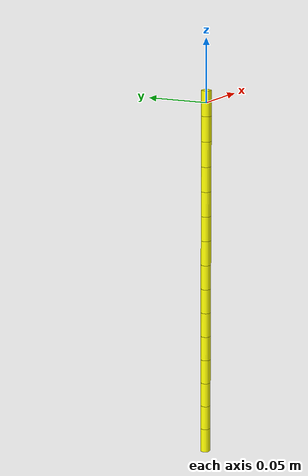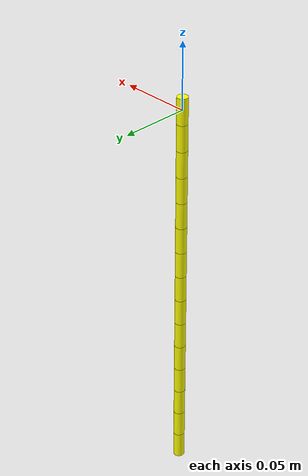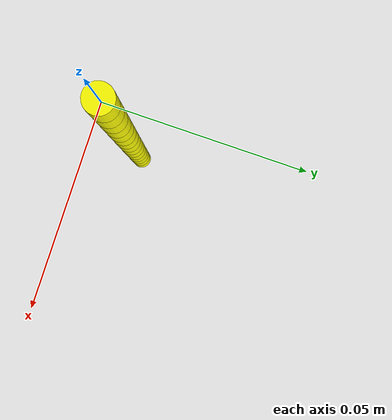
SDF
<?xml version='1.0'?>
<sdf version='1.6'>
<model name='cable_l300_r4.00_nb15_s1.0000_bent_'>
    <link name='link_0'>
      <inertial>
        <mass>4.523894e-03</mass>
        <inertia>
          <ixx>1.688921e-07</ixx>
          <ixy>0.000000e+00</ixy>
          <ixz>0.000000e+00</ixz>
          <iyy>1.688921e-07</iyy>
          <iyz>0.000000e+00</iyz>
          <izz>3.619116e-08</izz>
        </inertia>
        <pose frame=''>0 0 0 0 -0 0</pose>
      </inertial>
      <pose frame=''>0 0 0.000000 0 -0 0</pose>
      <gravity>1</gravity>
      <self_collide>0</self_collide>
      <kinematic>1</kinematic>
      <enable_wind>0</enable_wind>
      <visual name='visual'>
        <pose frame=''>0 0 0 0 -0 0</pose>
        <geometry>
          <cylinder>
            <radius>0.004000</radius>
            <length>0.020000</length>
          </cylinder>
        </geometry>
        <material>
          <lighting>1</lighting>
          <script>
            <uri>file://media/materials/scripts/gazebo.material</uri>
            <name>Gazebo/Grey</name>
          </script>
          <shader type='pixel'>
            <normal_map>__default__</normal_map>
          </shader>
          <ambient>0.5 0.75 0 1</ambient>
          <diffuse>1 1 0 1</diffuse>
          <specular>0.439 0.439 0.439 1</specular>
          <emissive>0.1 0 0.1 1</emissive>
        </material>
        <transparency>0</transparency>
        <cast_shadows>1</cast_shadows>
      </visual>
      <collision name='collision'>
        <laser_retro>0</laser_retro>
        <max_contacts>10</max_contacts>
        <pose frame=''>0 0 0 0 -0 0</pose>
        <geometry>
          <cylinder>
            <radius>0.004000</radius>
            <length>0.020000</length>
          </cylinder>
        </geometry>
        <surface>
          <friction>
            <ode>
              <mu>1</mu>
              <mu2>1</mu2>
              <fdir1>0 0 0</fdir1>
              <slip1>0</slip1>
              <slip2>0</slip2>
            </ode>
            <torsional>
              <coefficient>1</coefficient>
              <patch_radius>0</patch_radius>
              <surface_radius>0</surface_radius>
              <use_patch_radius>1</use_patch_radius>
              <ode>
                <slip>0</slip>
              </ode>
            </torsional>
          </friction>
          <bounce>
            <restitution_coefficient>0</restitution_coefficient>
            <threshold>1e+06</threshold>
          </bounce>
          <contact>
            <collide_without_contact>0</collide_without_contact>
            <collide_without_contact_bitmask>1</collide_without_contact_bitmask>
            <collide_bitmask>1</collide_bitmask>
            <ode>
              <soft_cfm>0</soft_cfm>
              <soft_erp>0.2</soft_erp>
              <kp>1e+13</kp>
              <kd>1</kd>
              <max_vel>0.01</max_vel>
              <min_depth>0</min_depth>
            </ode>
            <bullet>
              <split_impulse>1</split_impulse>
              <split_impulse_penetration_threshold>-0.01</split_impulse_penetration_threshold>
              <soft_cfm>0</soft_cfm>
              <soft_erp>0.2</soft_erp>
              <kp>1e+13</kp>
              <kd>1</kd>
            </bullet>
          </contact>
        </surface>
      </collision>
    </link>
    <link name='link_1'>
      <inertial>
        <mass>4.523894e-03</mass>
        <inertia>
          <ixx>1.688921e-07</ixx>
          <ixy>0.000000e+00</ixy>
          <ixz>0.000000e+00</ixz>
          <iyy>1.688921e-07</iyy>
          <iyz>0.000000e+00</iyz>
          <izz>3.619116e-08</izz>
        </inertia>
        <pose frame=''>0 0 0 0 -0 0</pose>
      </inertial>
      <pose frame=''>0 0 -0.020000 0 -0 0</pose>
      <gravity>1</gravity>
      <self_collide>0</self_collide>
      <kinematic>0</kinematic>
      <enable_wind>0</enable_wind>
      <visual name='visual'>
        <pose frame=''>0 0 0 0 -0 0</pose>
        <geometry>
          <cylinder>
            <radius>0.004000</radius>
            <length>0.020000</length>
          </cylinder>
        </geometry>
        <material>
          <lighting>1</lighting>
          <script>
            <uri>file://media/materials/scripts/gazebo.material</uri>
            <name>Gazebo/Grey</name>
          </script>
          <shader type='pixel'>
            <normal_map>__default__</normal_map>
          </shader>
          <ambient>0.5 0.75 0 1</ambient>
          <diffuse>1 1 0 1</diffuse>
          <specular>0.439 0.439 0.439 1</specular>
          <emissive>0.1 0 0.1 1</emissive>
        </material>
        <transparency>0</transparency>
        <cast_shadows>1</cast_shadows>
      </visual>
      <collision name='collision'>
        <laser_retro>0</laser_retro>
        <max_contacts>10</max_contacts>
        <pose frame=''>0 0 0 0 -0 0</pose>
        <geometry>
          <cylinder>
            <radius>0.004000</radius>
            <length>0.020000</length>
          </cylinder>
        </geometry>
        <surface>
          <friction>
            <ode>
              <mu>1</mu>
              <mu2>1</mu2>
              <fdir1>0 0 0</fdir1>
              <slip1>0</slip1>
              <slip2>0</slip2>
            </ode>
            <torsional>
              <coefficient>1</coefficient>
              <patch_radius>0</patch_radius>
              <surface_radius>0</surface_radius>
              <use_patch_radius>1</use_patch_radius>
              <ode>
                <slip>0</slip>
              </ode>
            </torsional>
          </friction>
          <bounce>
            <restitution_coefficient>0</restitution_coefficient>
            <threshold>1e+06</threshold>
          </bounce>
          <contact>
            <collide_without_contact>0</collide_without_contact>
            <collide_without_contact_bitmask>1</collide_without_contact_bitmask>
            <collide_bitmask>1</collide_bitmask>
            <ode>
              <soft_cfm>0</soft_cfm>
              <soft_erp>0.2</soft_erp>
              <kp>1e+13</kp>
              <kd>1</kd>
              <max_vel>0.01</max_vel>
              <min_depth>0</min_depth>
            </ode>
            <bullet>
              <split_impulse>1</split_impulse>
              <split_impulse_penetration_threshold>-0.01</split_impulse_penetration_threshold>
              <soft_cfm>0</soft_cfm>
              <soft_erp>0.2</soft_erp>
              <kp>1e+13</kp>
              <kd>1</kd>
            </bullet>
          </contact>
        </surface>
      </collision>
    </link>
    <link name='link_2'>
      <inertial>
        <mass>4.523894e-03</mass>
        <inertia>
          <ixx>1.688921e-07</ixx>
          <ixy>0.000000e+00</ixy>
          <ixz>0.000000e+00</ixz>
          <iyy>1.688921e-07</iyy>
          <iyz>0.000000e+00</iyz>
          <izz>3.619116e-08</izz>
        </inertia>
        <pose frame=''>0 0 0 0 -0 0</pose>
      </inertial>
      <pose frame=''>0 0 -0.040000 0 -0 0</pose>
      <gravity>1</gravity>
      <self_collide>0</self_collide>
      <kinematic>0</kinematic>
      <enable_wind>0</enable_wind>
      <visual name='visual'>
        <pose frame=''>0 0 0 0 -0 0</pose>
        <geometry>
          <cylinder>
            <radius>0.004000</radius>
            <length>0.020000</length>
          </cylinder>
        </geometry>
        <material>
          <lighting>1</lighting>
          <script>
            <uri>file://media/materials/scripts/gazebo.material</uri>
            <name>Gazebo/Grey</name>
          </script>
          <shader type='pixel'>
            <normal_map>__default__</normal_map>
          </shader>
          <ambient>0.5 0.75 0 1</ambient>
          <diffuse>1 1 0 1</diffuse>
          <specular>0.439 0.439 0.439 1</specular>
          <emissive>0.1 0 0.1 1</emissive>
        </material>
        <transparency>0</transparency>
        <cast_shadows>1</cast_shadows>
      </visual>
      <collision name='collision'>
        <laser_retro>0</laser_retro>
        <max_contacts>10</max_contacts>
        <pose frame=''>0 0 0 0 -0 0</pose>
        <geometry>
          <cylinder>
            <radius>0.004000</radius>
            <length>0.020000</length>
          </cylinder>
        </geometry>
        <surface>
          <friction>
            <ode>
              <mu>1</mu>
              <mu2>1</mu2>
              <fdir1>0 0 0</fdir1>
              <slip1>0</slip1>
              <slip2>0</slip2>
            </ode>
            <torsional>
              <coefficient>1</coefficient>
              <patch_radius>0</patch_radius>
              <surface_radius>0</surface_radius>
              <use_patch_radius>1</use_patch_radius>
              <ode>
                <slip>0</slip>
              </ode>
            </torsional>
          </friction>
          <bounce>
            <restitution_coefficient>0</restitution_coefficient>
            <threshold>1e+06</threshold>
          </bounce>
          <contact>
            <collide_without_contact>0</collide_without_contact>
            <collide_without_contact_bitmask>1</collide_without_contact_bitmask>
            <collide_bitmask>1</collide_bitmask>
            <ode>
              <soft_cfm>0</soft_cfm>
              <soft_erp>0.2</soft_erp>
              <kp>1e+13</kp>
              <kd>1</kd>
              <max_vel>0.01</max_vel>
              <min_depth>0</min_depth>
            </ode>
            <bullet>
              <split_impulse>1</split_impulse>
              <split_impulse_penetration_threshold>-0.01</split_impulse_penetration_threshold>
              <soft_cfm>0</soft_cfm>
              <soft_erp>0.2</soft_erp>
              <kp>1e+13</kp>
              <kd>1</kd>
            </bullet>
          </contact>
        </surface>
      </collision>
    </link>
    <link name='link_3'>
      <inertial>
        <mass>4.523894e-03</mass>
        <inertia>
          <ixx>1.688921e-07</ixx>
          <ixy>0.000000e+00</ixy>
          <ixz>0.000000e+00</ixz>
          <iyy>1.688921e-07</iyy>
          <iyz>0.000000e+00</iyz>
          <izz>3.619116e-08</izz>
        </inertia>
        <pose frame=''>0 0 0 0 -0 0</pose>
      </inertial>
      <pose frame=''>0 0 -0.060000 0 -0 0</pose>
      <gravity>1</gravity>
      <self_collide>0</self_collide>
      <kinematic>0</kinematic>
      <enable_wind>0</enable_wind>
      <visual name='visual'>
        <pose frame=''>0 0 0 0 -0 0</pose>
        <geometry>
          <cylinder>
            <radius>0.004000</radius>
            <length>0.020000</length>
          </cylinder>
        </geometry>
        <material>
          <lighting>1</lighting>
          <script>
            <uri>file://media/materials/scripts/gazebo.material</uri>
            <name>Gazebo/Grey</name>
          </script>
          <shader type='pixel'>
            <normal_map>__default__</normal_map>
          </shader>
          <ambient>0.5 0.75 0 1</ambient>
          <diffuse>1 1 0 1</diffuse>
          <specular>0.439 0.439 0.439 1</specular>
          <emissive>0.1 0 0.1 1</emissive>
        </material>
        <transparency>0</transparency>
        <cast_shadows>1</cast_shadows>
      </visual>
      <collision name='collision'>
        <laser_retro>0</laser_retro>
        <max_contacts>10</max_contacts>
        <pose frame=''>0 0 0 0 -0 0</pose>
        <geometry>
          <cylinder>
            <radius>0.004000</radius>
            <length>0.020000</length>
          </cylinder>
        </geometry>
        <surface>
          <friction>
            <ode>
              <mu>1</mu>
              <mu2>1</mu2>
              <fdir1>0 0 0</fdir1>
              <slip1>0</slip1>
              <slip2>0</slip2>
            </ode>
            <torsional>
              <coefficient>1</coefficient>
              <patch_radius>0</patch_radius>
              <surface_radius>0</surface_radius>
              <use_patch_radius>1</use_patch_radius>
              <ode>
                <slip>0</slip>
              </ode>
            </torsional>
          </friction>
          <bounce>
            <restitution_coefficient>0</restitution_coefficient>
            <threshold>1e+06</threshold>
          </bounce>
          <contact>
            <collide_without_contact>0</collide_without_contact>
            <collide_without_contact_bitmask>1</collide_without_contact_bitmask>
            <collide_bitmask>1</collide_bitmask>
            <ode>
              <soft_cfm>0</soft_cfm>
              <soft_erp>0.2</soft_erp>
              <kp>1e+13</kp>
              <kd>1</kd>
              <max_vel>0.01</max_vel>
              <min_depth>0</min_depth>
            </ode>
            <bullet>
              <split_impulse>1</split_impulse>
              <split_impulse_penetration_threshold>-0.01</split_impulse_penetration_threshold>
              <soft_cfm>0</soft_cfm>
              <soft_erp>0.2</soft_erp>
              <kp>1e+13</kp>
              <kd>1</kd>
            </bullet>
          </contact>
        </surface>
      </collision>
    </link>
    <link name='link_4'>
      <inertial>
        <mass>4.523894e-03</mass>
        <inertia>
          <ixx>1.688921e-07</ixx>
          <ixy>0.000000e+00</ixy>
          <ixz>0.000000e+00</ixz>
          <iyy>1.688921e-07</iyy>
          <iyz>0.000000e+00</iyz>
          <izz>3.619116e-08</izz>
        </inertia>
        <pose frame=''>0 0 0 0 -0 0</pose>
      </inertial>
      <pose frame=''>0 0 -0.080000 0 -0 0</pose>
      <gravity>1</gravity>
      <self_collide>0</self_collide>
      <kinematic>0</kinematic>
      <enable_wind>0</enable_wind>
      <visual name='visual'>
        <pose frame=''>0 0 0 0 -0 0</pose>
        <geometry>
          <cylinder>
            <radius>0.004000</radius>
            <length>0.020000</length>
          </cylinder>
        </geometry>
        <material>
          <lighting>1</lighting>
          <script>
            <uri>file://media/materials/scripts/gazebo.material</uri>
            <name>Gazebo/Grey</name>
          </script>
          <shader type='pixel'>
            <normal_map>__default__</normal_map>
          </shader>
          <ambient>0.5 0.75 0 1</ambient>
          <diffuse>1 1 0 1</diffuse>
          <specular>0.439 0.439 0.439 1</specular>
          <emissive>0.1 0 0.1 1</emissive>
        </material>
        <transparency>0</transparency>
        <cast_shadows>1</cast_shadows>
      </visual>
      <collision name='collision'>
        <laser_retro>0</laser_retro>
        <max_contacts>10</max_contacts>
        <pose frame=''>0 0 0 0 -0 0</pose>
        <geometry>
          <cylinder>
            <radius>0.004000</radius>
            <length>0.020000</length>
          </cylinder>
        </geometry>
        <surface>
          <friction>
            <ode>
              <mu>1</mu>
              <mu2>1</mu2>
              <fdir1>0 0 0</fdir1>
              <slip1>0</slip1>
              <slip2>0</slip2>
            </ode>
            <torsional>
              <coefficient>1</coefficient>
              <patch_radius>0</patch_radius>
              <surface_radius>0</surface_radius>
              <use_patch_radius>1</use_patch_radius>
              <ode>
                <slip>0</slip>
              </ode>
            </torsional>
          </friction>
          <bounce>
            <restitution_coefficient>0</restitution_coefficient>
            <threshold>1e+06</threshold>
          </bounce>
          <contact>
            <collide_without_contact>0</collide_without_contact>
            <collide_without_contact_bitmask>1</collide_without_contact_bitmask>
            <collide_bitmask>1</collide_bitmask>
            <ode>
              <soft_cfm>0</soft_cfm>
              <soft_erp>0.2</soft_erp>
              <kp>1e+13</kp>
              <kd>1</kd>
              <max_vel>0.01</max_vel>
              <min_depth>0</min_depth>
            </ode>
            <bullet>
              <split_impulse>1</split_impulse>
              <split_impulse_penetration_threshold>-0.01</split_impulse_penetration_threshold>
              <soft_cfm>0</soft_cfm>
              <soft_erp>0.2</soft_erp>
              <kp>1e+13</kp>
              <kd>1</kd>
            </bullet>
          </contact>
        </surface>
      </collision>
    </link>
    <link name='link_5'>
      <inertial>
        <mass>4.523894e-03</mass>
        <inertia>
          <ixx>1.688921e-07</ixx>
          <ixy>0.000000e+00</ixy>
          <ixz>0.000000e+00</ixz>
          <iyy>1.688921e-07</iyy>
          <iyz>0.000000e+00</iyz>
          <izz>3.619116e-08</izz>
        </inertia>
        <pose frame=''>0 0 0 0 -0 0</pose>
      </inertial>
      <pose frame=''>0 0 -0.100000 0 -0 0</pose>
      <gravity>1</gravity>
      <self_collide>0</self_collide>
      <kinematic>0</kinematic>
      <enable_wind>0</enable_wind>
      <visual name='visual'>
        <pose frame=''>0 0 0 0 -0 0</pose>
        <geometry>
          <cylinder>
            <radius>0.004000</radius>
            <length>0.020000</length>
          </cylinder>
        </geometry>
        <material>
          <lighting>1</lighting>
          <script>
            <uri>file://media/materials/scripts/gazebo.material</uri>
            <name>Gazebo/Grey</name>
          </script>
          <shader type='pixel'>
            <normal_map>__default__</normal_map>
          </shader>
          <ambient>0.5 0.75 0 1</ambient>
          <diffuse>1 1 0 1</diffuse>
          <specular>0.439 0.439 0.439 1</specular>
          <emissive>0.1 0 0.1 1</emissive>
        </material>
        <transparency>0</transparency>
        <cast_shadows>1</cast_shadows>
      </visual>
      <collision name='collision'>
        <laser_retro>0</laser_retro>
        <max_contacts>10</max_contacts>
        <pose frame=''>0 0 0 0 -0 0</pose>
        <geometry>
          <cylinder>
            <radius>0.004000</radius>
            <length>0.020000</length>
          </cylinder>
        </geometry>
        <surface>
          <friction>
            <ode>
              <mu>1</mu>
              <mu2>1</mu2>
              <fdir1>0 0 0</fdir1>
              <slip1>0</slip1>
              <slip2>0</slip2>
            </ode>
            <torsional>
              <coefficient>1</coefficient>
              <patch_radius>0</patch_radius>
              <surface_radius>0</surface_radius>
              <use_patch_radius>1</use_patch_radius>
              <ode>
                <slip>0</slip>
              </ode>
            </torsional>
          </friction>
          <bounce>
            <restitution_coefficient>0</restitution_coefficient>
            <threshold>1e+06</threshold>
          </bounce>
          <contact>
            <collide_without_contact>0</collide_without_contact>
            <collide_without_contact_bitmask>1</collide_without_contact_bitmask>
            <collide_bitmask>1</collide_bitmask>
            <ode>
              <soft_cfm>0</soft_cfm>
              <soft_erp>0.2</soft_erp>
              <kp>1e+13</kp>
              <kd>1</kd>
              <max_vel>0.01</max_vel>
              <min_depth>0</min_depth>
            </ode>
            <bullet>
              <split_impulse>1</split_impulse>
              <split_impulse_penetration_threshold>-0.01</split_impulse_penetration_threshold>
              <soft_cfm>0</soft_cfm>
              <soft_erp>0.2</soft_erp>
              <kp>1e+13</kp>
              <kd>1</kd>
            </bullet>
          </contact>
        </surface>
      </collision>
    </link>
    <link name='link_6'>
      <inertial>
        <mass>4.523894e-03</mass>
        <inertia>
          <ixx>1.688921e-07</ixx>
          <ixy>0.000000e+00</ixy>
          <ixz>0.000000e+00</ixz>
          <iyy>1.688921e-07</iyy>
          <iyz>0.000000e+00</iyz>
          <izz>3.619116e-08</izz>
        </inertia>
        <pose frame=''>0 0 0 0 -0 0</pose>
      </inertial>
      <pose frame=''>0 0 -0.120000 0 -0 0</pose>
      <gravity>1</gravity>
      <self_collide>0</self_collide>
      <kinematic>0</kinematic>
      <enable_wind>0</enable_wind>
      <visual name='visual'>
        <pose frame=''>0 0 0 0 -0 0</pose>
        <geometry>
          <cylinder>
            <radius>0.004000</radius>
            <length>0.020000</length>
          </cylinder>
        </geometry>
        <material>
          <lighting>1</lighting>
          <script>
            <uri>file://media/materials/scripts/gazebo.material</uri>
            <name>Gazebo/Grey</name>
          </script>
          <shader type='pixel'>
            <normal_map>__default__</normal_map>
          </shader>
          <ambient>0.5 0.75 0 1</ambient>
          <diffuse>1 1 0 1</diffuse>
          <specular>0.439 0.439 0.439 1</specular>
          <emissive>0.1 0 0.1 1</emissive>
        </material>
        <transparency>0</transparency>
        <cast_shadows>1</cast_shadows>
      </visual>
      <collision name='collision'>
        <laser_retro>0</laser_retro>
        <max_contacts>10</max_contacts>
        <pose frame=''>0 0 0 0 -0 0</pose>
        <geometry>
          <cylinder>
            <radius>0.004000</radius>
            <length>0.020000</length>
          </cylinder>
        </geometry>
        <surface>
          <friction>
            <ode>
              <mu>1</mu>
              <mu2>1</mu2>
              <fdir1>0 0 0</fdir1>
              <slip1>0</slip1>
              <slip2>0</slip2>
            </ode>
            <torsional>
              <coefficient>1</coefficient>
              <patch_radius>0</patch_radius>
              <surface_radius>0</surface_radius>
              <use_patch_radius>1</use_patch_radius>
              <ode>
                <slip>0</slip>
              </ode>
            </torsional>
          </friction>
          <bounce>
            <restitution_coefficient>0</restitution_coefficient>
            <threshold>1e+06</threshold>
          </bounce>
          <contact>
            <collide_without_contact>0</collide_without_contact>
            <collide_without_contact_bitmask>1</collide_without_contact_bitmask>
            <collide_bitmask>1</collide_bitmask>
            <ode>
              <soft_cfm>0</soft_cfm>
              <soft_erp>0.2</soft_erp>
              <kp>1e+13</kp>
              <kd>1</kd>
              <max_vel>0.01</max_vel>
              <min_depth>0</min_depth>
            </ode>
            <bullet>
              <split_impulse>1</split_impulse>
              <split_impulse_penetration_threshold>-0.01</split_impulse_penetration_threshold>
              <soft_cfm>0</soft_cfm>
              <soft_erp>0.2</soft_erp>
              <kp>1e+13</kp>
              <kd>1</kd>
            </bullet>
          </contact>
        </surface>
      </collision>
    </link>
    <link name='link_7'>
      <inertial>
        <mass>4.523894e-03</mass>
        <inertia>
          <ixx>1.688921e-07</ixx>
          <ixy>0.000000e+00</ixy>
          <ixz>0.000000e+00</ixz>
          <iyy>1.688921e-07</iyy>
          <iyz>0.000000e+00</iyz>
          <izz>3.619116e-08</izz>
        </inertia>
        <pose frame=''>0 0 0 0 -0 0</pose>
      </inertial>
      <pose frame=''>0 0 -0.140000 0 -0 0</pose>
      <gravity>1</gravity>
      <self_collide>0</self_collide>
      <kinematic>0</kinematic>
      <enable_wind>0</enable_wind>
      <visual name='visual'>
        <pose frame=''>0 0 0 0 -0 0</pose>
        <geometry>
          <cylinder>
            <radius>0.004000</radius>
            <length>0.020000</length>
          </cylinder>
        </geometry>
        <material>
          <lighting>1</lighting>
          <script>
            <uri>file://media/materials/scripts/gazebo.material</uri>
            <name>Gazebo/Grey</name>
          </script>
          <shader type='pixel'>
            <normal_map>__default__</normal_map>
          </shader>
          <ambient>0.5 0.75 0 1</ambient>
          <diffuse>1 1 0 1</diffuse>
          <specular>0.439 0.439 0.439 1</specular>
          <emissive>0.1 0 0.1 1</emissive>
        </material>
        <transparency>0</transparency>
        <cast_shadows>1</cast_shadows>
      </visual>
      <collision name='collision'>
        <laser_retro>0</laser_retro>
        <max_contacts>10</max_contacts>
        <pose frame=''>0 0 0 0 -0 0</pose>
        <geometry>
          <cylinder>
            <radius>0.004000</radius>
            <length>0.020000</length>
          </cylinder>
        </geometry>
        <surface>
          <friction>
            <ode>
              <mu>1</mu>
              <mu2>1</mu2>
              <fdir1>0 0 0</fdir1>
              <slip1>0</slip1>
              <slip2>0</slip2>
            </ode>
            <torsional>
              <coefficient>1</coefficient>
              <patch_radius>0</patch_radius>
              <surface_radius>0</surface_radius>
              <use_patch_radius>1</use_patch_radius>
              <ode>
                <slip>0</slip>
              </ode>
            </torsional>
          </friction>
          <bounce>
            <restitution_coefficient>0</restitution_coefficient>
            <threshold>1e+06</threshold>
          </bounce>
          <contact>
            <collide_without_contact>0</collide_without_contact>
            <collide_without_contact_bitmask>1</collide_without_contact_bitmask>
            <collide_bitmask>1</collide_bitmask>
            <ode>
              <soft_cfm>0</soft_cfm>
              <soft_erp>0.2</soft_erp>
              <kp>1e+13</kp>
              <kd>1</kd>
              <max_vel>0.01</max_vel>
              <min_depth>0</min_depth>
            </ode>
            <bullet>
              <split_impulse>1</split_impulse>
              <split_impulse_penetration_threshold>-0.01</split_impulse_penetration_threshold>
              <soft_cfm>0</soft_cfm>
              <soft_erp>0.2</soft_erp>
              <kp>1e+13</kp>
              <kd>1</kd>
            </bullet>
          </contact>
        </surface>
      </collision>
    </link>
    <link name='link_8'>
      <inertial>
        <mass>4.523894e-03</mass>
        <inertia>
          <ixx>1.688921e-07</ixx>
          <ixy>0.000000e+00</ixy>
          <ixz>0.000000e+00</ixz>
          <iyy>1.688921e-07</iyy>
          <iyz>0.000000e+00</iyz>
          <izz>3.619116e-08</izz>
        </inertia>
        <pose frame=''>0 0 0 0 -0 0</pose>
      </inertial>
      <pose frame=''>0 0 -0.160000 0 -0 0</pose>
      <gravity>1</gravity>
      <self_collide>0</self_collide>
      <kinematic>0</kinematic>
      <enable_wind>0</enable_wind>
      <visual name='visual'>
        <pose frame=''>0 0 0 0 -0 0</pose>
        <geometry>
          <cylinder>
            <radius>0.004000</radius>
            <length>0.020000</length>
          </cylinder>
        </geometry>
        <material>
          <lighting>1</lighting>
          <script>
            <uri>file://media/materials/scripts/gazebo.material</uri>
            <name>Gazebo/Grey</name>
          </script>
          <shader type='pixel'>
            <normal_map>__default__</normal_map>
          </shader>
          <ambient>0.5 0.75 0 1</ambient>
          <diffuse>1 1 0 1</diffuse>
          <specular>0.439 0.439 0.439 1</specular>
          <emissive>0.1 0 0.1 1</emissive>
        </material>
        <transparency>0</transparency>
        <cast_shadows>1</cast_shadows>
      </visual>
      <collision name='collision'>
        <laser_retro>0</laser_retro>
        <max_contacts>10</max_contacts>
        <pose frame=''>0 0 0 0 -0 0</pose>
        <geometry>
          <cylinder>
            <radius>0.004000</radius>
            <length>0.020000</length>
          </cylinder>
        </geometry>
        <surface>
          <friction>
            <ode>
              <mu>1</mu>
              <mu2>1</mu2>
              <fdir1>0 0 0</fdir1>
              <slip1>0</slip1>
              <slip2>0</slip2>
            </ode>
            <torsional>
              <coefficient>1</coefficient>
              <patch_radius>0</patch_radius>
              <surface_radius>0</surface_radius>
              <use_patch_radius>1</use_patch_radius>
              <ode>
                <slip>0</slip>
              </ode>
            </torsional>
          </friction>
          <bounce>
            <restitution_coefficient>0</restitution_coefficient>
            <threshold>1e+06</threshold>
          </bounce>
          <contact>
            <collide_without_contact>0</collide_without_contact>
            <collide_without_contact_bitmask>1</collide_without_contact_bitmask>
            <collide_bitmask>1</collide_bitmask>
            <ode>
              <soft_cfm>0</soft_cfm>
              <soft_erp>0.2</soft_erp>
              <kp>1e+13</kp>
              <kd>1</kd>
              <max_vel>0.01</max_vel>
              <min_depth>0</min_depth>
            </ode>
            <bullet>
              <split_impulse>1</split_impulse>
              <split_impulse_penetration_threshold>-0.01</split_impulse_penetration_threshold>
              <soft_cfm>0</soft_cfm>
              <soft_erp>0.2</soft_erp>
              <kp>1e+13</kp>
              <kd>1</kd>
            </bullet>
          </contact>
        </surface>
      </collision>
    </link>
    <link name='link_9'>
      <inertial>
        <mass>4.523894e-03</mass>
        <inertia>
          <ixx>1.688921e-07</ixx>
          <ixy>0.000000e+00</ixy>
          <ixz>0.000000e+00</ixz>
          <iyy>1.688921e-07</iyy>
          <iyz>0.000000e+00</iyz>
          <izz>3.619116e-08</izz>
        </inertia>
        <pose frame=''>0 0 0 0 -0 0</pose>
      </inertial>
      <pose frame=''>0 0 -0.180000 0 -0 0</pose>
      <gravity>1</gravity>
      <self_collide>0</self_collide>
      <kinematic>0</kinematic>
      <enable_wind>0</enable_wind>
      <visual name='visual'>
        <pose frame=''>0 0 0 0 -0 0</pose>
        <geometry>
          <cylinder>
            <radius>0.004000</radius>
            <length>0.020000</length>
          </cylinder>
        </geometry>
        <material>
          <lighting>1</lighting>
          <script>
            <uri>file://media/materials/scripts/gazebo.material</uri>
            <name>Gazebo/Grey</name>
          </script>
          <shader type='pixel'>
            <normal_map>__default__</normal_map>
          </shader>
          <ambient>0.5 0.75 0 1</ambient>
          <diffuse>1 1 0 1</diffuse>
          <specular>0.439 0.439 0.439 1</specular>
          <emissive>0.1 0 0.1 1</emissive>
        </material>
        <transparency>0</transparency>
        <cast_shadows>1</cast_shadows>
      </visual>
      <collision name='collision'>
        <laser_retro>0</laser_retro>
        <max_contacts>10</max_contacts>
        <pose frame=''>0 0 0 0 -0 0</pose>
        <geometry>
          <cylinder>
            <radius>0.004000</radius>
            <length>0.020000</length>
          </cylinder>
        </geometry>
        <surface>
          <friction>
            <ode>
              <mu>1</mu>
              <mu2>1</mu2>
              <fdir1>0 0 0</fdir1>
              <slip1>0</slip1>
              <slip2>0</slip2>
            </ode>
            <torsional>
              <coefficient>1</coefficient>
              <patch_radius>0</patch_radius>
              <surface_radius>0</surface_radius>
              <use_patch_radius>1</use_patch_radius>
              <ode>
                <slip>0</slip>
              </ode>
            </torsional>
          </friction>
          <bounce>
            <restitution_coefficient>0</restitution_coefficient>
            <threshold>1e+06</threshold>
          </bounce>
          <contact>
            <collide_without_contact>0</collide_without_contact>
            <collide_without_contact_bitmask>1</collide_without_contact_bitmask>
            <collide_bitmask>1</collide_bitmask>
            <ode>
              <soft_cfm>0</soft_cfm>
              <soft_erp>0.2</soft_erp>
              <kp>1e+13</kp>
              <kd>1</kd>
              <max_vel>0.01</max_vel>
              <min_depth>0</min_depth>
            </ode>
            <bullet>
              <split_impulse>1</split_impulse>
              <split_impulse_penetration_threshold>-0.01</split_impulse_penetration_threshold>
              <soft_cfm>0</soft_cfm>
              <soft_erp>0.2</soft_erp>
              <kp>1e+13</kp>
              <kd>1</kd>
            </bullet>
          </contact>
        </surface>
      </collision>
    </link>
    <link name='link_10'>
      <inertial>
        <mass>4.523894e-03</mass>
        <inertia>
          <ixx>1.688921e-07</ixx>
          <ixy>0.000000e+00</ixy>
          <ixz>0.000000e+00</ixz>
          <iyy>1.688921e-07</iyy>
          <iyz>0.000000e+00</iyz>
          <izz>3.619116e-08</izz>
        </inertia>
        <pose frame=''>0 0 0 0 -0 0</pose>
      </inertial>
      <pose frame=''>0 0 -0.200000 0 -0 0</pose>
      <gravity>1</gravity>
      <self_collide>0</self_collide>
      <kinematic>0</kinematic>
      <enable_wind>0</enable_wind>
      <visual name='visual'>
        <pose frame=''>0 0 0 0 -0 0</pose>
        <geometry>
          <cylinder>
            <radius>0.004000</radius>
            <length>0.020000</length>
          </cylinder>
        </geometry>
        <material>
          <lighting>1</lighting>
          <script>
            <uri>file://media/materials/scripts/gazebo.material</uri>
            <name>Gazebo/Grey</name>
          </script>
          <shader type='pixel'>
            <normal_map>__default__</normal_map>
          </shader>
          <ambient>0.5 0.75 0 1</ambient>
          <diffuse>1 1 0 1</diffuse>
          <specular>0.439 0.439 0.439 1</specular>
          <emissive>0.1 0 0.1 1</emissive>
        </material>
        <transparency>0</transparency>
        <cast_shadows>1</cast_shadows>
      </visual>
      <collision name='collision'>
        <laser_retro>0</laser_retro>
        <max_contacts>10</max_contacts>
        <pose frame=''>0 0 0 0 -0 0</pose>
        <geometry>
          <cylinder>
            <radius>0.004000</radius>
            <length>0.020000</length>
          </cylinder>
        </geometry>
        <surface>
          <friction>
            <ode>
              <mu>1</mu>
              <mu2>1</mu2>
              <fdir1>0 0 0</fdir1>
              <slip1>0</slip1>
              <slip2>0</slip2>
            </ode>
            <torsional>
              <coefficient>1</coefficient>
              <patch_radius>0</patch_radius>
              <surface_radius>0</surface_radius>
              <use_patch_radius>1</use_patch_radius>
              <ode>
                <slip>0</slip>
              </ode>
            </torsional>
          </friction>
          <bounce>
            <restitution_coefficient>0</restitution_coefficient>
            <threshold>1e+06</threshold>
          </bounce>
          <contact>
            <collide_without_contact>0</collide_without_contact>
            <collide_without_contact_bitmask>1</collide_without_contact_bitmask>
            <collide_bitmask>1</collide_bitmask>
            <ode>
              <soft_cfm>0</soft_cfm>
              <soft_erp>0.2</soft_erp>
              <kp>1e+13</kp>
              <kd>1</kd>
              <max_vel>0.01</max_vel>
              <min_depth>0</min_depth>
            </ode>
            <bullet>
              <split_impulse>1</split_impulse>
              <split_impulse_penetration_threshold>-0.01</split_impulse_penetration_threshold>
              <soft_cfm>0</soft_cfm>
              <soft_erp>0.2</soft_erp>
              <kp>1e+13</kp>
              <kd>1</kd>
            </bullet>
          </contact>
        </surface>
      </collision>
    </link>
    <link name='link_11'>
      <inertial>
        <mass>4.523894e-03</mass>
        <inertia>
          <ixx>1.688921e-07</ixx>
          <ixy>0.000000e+00</ixy>
          <ixz>0.000000e+00</ixz>
          <iyy>1.688921e-07</iyy>
          <iyz>0.000000e+00</iyz>
          <izz>3.619116e-08</izz>
        </inertia>
        <pose frame=''>0 0 0 0 -0 0</pose>
      </inertial>
      <pose frame=''>0 0 -0.220000 0 -0 0</pose>
      <gravity>1</gravity>
      <self_collide>0</self_collide>
      <kinematic>0</kinematic>
      <enable_wind>0</enable_wind>
      <visual name='visual'>
        <pose frame=''>0 0 0 0 -0 0</pose>
        <geometry>
          <cylinder>
            <radius>0.004000</radius>
            <length>0.020000</length>
          </cylinder>
        </geometry>
        <material>
          <lighting>1</lighting>
          <script>
            <uri>file://media/materials/scripts/gazebo.material</uri>
            <name>Gazebo/Grey</name>
          </script>
          <shader type='pixel'>
            <normal_map>__default__</normal_map>
          </shader>
          <ambient>0.5 0.75 0 1</ambient>
          <diffuse>1 1 0 1</diffuse>
          <specular>0.439 0.439 0.439 1</specular>
          <emissive>0.1 0 0.1 1</emissive>
        </material>
        <transparency>0</transparency>
        <cast_shadows>1</cast_shadows>
      </visual>
      <collision name='collision'>
        <laser_retro>0</laser_retro>
        <max_contacts>10</max_contacts>
        <pose frame=''>0 0 0 0 -0 0</pose>
        <geometry>
          <cylinder>
            <radius>0.004000</radius>
            <length>0.020000</length>
          </cylinder>
        </geometry>
        <surface>
          <friction>
            <ode>
              <mu>1</mu>
              <mu2>1</mu2>
              <fdir1>0 0 0</fdir1>
              <slip1>0</slip1>
              <slip2>0</slip2>
            </ode>
            <torsional>
              <coefficient>1</coefficient>
              <patch_radius>0</patch_radius>
              <surface_radius>0</surface_radius>
              <use_patch_radius>1</use_patch_radius>
              <ode>
                <slip>0</slip>
              </ode>
            </torsional>
          </friction>
          <bounce>
            <restitution_coefficient>0</restitution_coefficient>
            <threshold>1e+06</threshold>
          </bounce>
          <contact>
            <collide_without_contact>0</collide_without_contact>
            <collide_without_contact_bitmask>1</collide_without_contact_bitmask>
            <collide_bitmask>1</collide_bitmask>
            <ode>
              <soft_cfm>0</soft_cfm>
              <soft_erp>0.2</soft_erp>
              <kp>1e+13</kp>
              <kd>1</kd>
              <max_vel>0.01</max_vel>
              <min_depth>0</min_depth>
            </ode>
            <bullet>
              <split_impulse>1</split_impulse>
              <split_impulse_penetration_threshold>-0.01</split_impulse_penetration_threshold>
              <soft_cfm>0</soft_cfm>
              <soft_erp>0.2</soft_erp>
              <kp>1e+13</kp>
              <kd>1</kd>
            </bullet>
          </contact>
        </surface>
      </collision>
    </link>
    <link name='link_12'>
      <inertial>
        <mass>4.523894e-03</mass>
        <inertia>
          <ixx>1.688921e-07</ixx>
          <ixy>0.000000e+00</ixy>
          <ixz>0.000000e+00</ixz>
          <iyy>1.688921e-07</iyy>
          <iyz>0.000000e+00</iyz>
          <izz>3.619116e-08</izz>
        </inertia>
        <pose frame=''>0 0 0 0 -0 0</pose>
      </inertial>
      <pose frame=''>0 0 -0.240000 0 -0 0</pose>
      <gravity>1</gravity>
      <self_collide>0</self_collide>
      <kinematic>0</kinematic>
      <enable_wind>0</enable_wind>
      <visual name='visual'>
        <pose frame=''>0 0 0 0 -0 0</pose>
        <geometry>
          <cylinder>
            <radius>0.004000</radius>
            <length>0.020000</length>
          </cylinder>
        </geometry>
        <material>
          <lighting>1</lighting>
          <script>
            <uri>file://media/materials/scripts/gazebo.material</uri>
            <name>Gazebo/Grey</name>
          </script>
          <shader type='pixel'>
            <normal_map>__default__</normal_map>
          </shader>
          <ambient>0.5 0.75 0 1</ambient>
          <diffuse>1 1 0 1</diffuse>
          <specular>0.439 0.439 0.439 1</specular>
          <emissive>0.1 0 0.1 1</emissive>
        </material>
        <transparency>0</transparency>
        <cast_shadows>1</cast_shadows>
      </visual>
      <collision name='collision'>
        <laser_retro>0</laser_retro>
        <max_contacts>10</max_contacts>
        <pose frame=''>0 0 0 0 -0 0</pose>
        <geometry>
          <cylinder>
            <radius>0.004000</radius>
            <length>0.020000</length>
          </cylinder>
        </geometry>
        <surface>
          <friction>
            <ode>
              <mu>1</mu>
              <mu2>1</mu2>
              <fdir1>0 0 0</fdir1>
              <slip1>0</slip1>
              <slip2>0</slip2>
            </ode>
            <torsional>
              <coefficient>1</coefficient>
              <patch_radius>0</patch_radius>
              <surface_radius>0</surface_radius>
              <use_patch_radius>1</use_patch_radius>
              <ode>
                <slip>0</slip>
              </ode>
            </torsional>
          </friction>
          <bounce>
            <restitution_coefficient>0</restitution_coefficient>
            <threshold>1e+06</threshold>
          </bounce>
          <contact>
            <collide_without_contact>0</collide_without_contact>
            <collide_without_contact_bitmask>1</collide_without_contact_bitmask>
            <collide_bitmask>1</collide_bitmask>
            <ode>
              <soft_cfm>0</soft_cfm>
              <soft_erp>0.2</soft_erp>
              <kp>1e+13</kp>
              <kd>1</kd>
              <max_vel>0.01</max_vel>
              <min_depth>0</min_depth>
            </ode>
            <bullet>
              <split_impulse>1</split_impulse>
              <split_impulse_penetration_threshold>-0.01</split_impulse_penetration_threshold>
              <soft_cfm>0</soft_cfm>
              <soft_erp>0.2</soft_erp>
              <kp>1e+13</kp>
              <kd>1</kd>
            </bullet>
          </contact>
        </surface>
      </collision>
    </link>
    <link name='link_13'>
      <inertial>
        <mass>4.523894e-03</mass>
        <inertia>
          <ixx>1.688921e-07</ixx>
          <ixy>0.000000e+00</ixy>
          <ixz>0.000000e+00</ixz>
          <iyy>1.688921e-07</iyy>
          <iyz>0.000000e+00</iyz>
          <izz>3.619116e-08</izz>
        </inertia>
        <pose frame=''>0 0 0 0 -0 0</pose>
      </inertial>
      <pose frame=''>0 0 -0.260000 0 -0 0</pose>
      <gravity>1</gravity>
      <self_collide>0</self_collide>
      <kinematic>0</kinematic>
      <enable_wind>0</enable_wind>
      <visual name='visual'>
        <pose frame=''>0 0 0 0 -0 0</pose>
        <geometry>
          <cylinder>
            <radius>0.004000</radius>
            <length>0.020000</length>
          </cylinder>
        </geometry>
        <material>
          <lighting>1</lighting>
          <script>
            <uri>file://media/materials/scripts/gazebo.material</uri>
            <name>Gazebo/Grey</name>
          </script>
          <shader type='pixel'>
            <normal_map>__default__</normal_map>
          </shader>
          <ambient>0.5 0.75 0 1</ambient>
          <diffuse>1 1 0 1</diffuse>
          <specular>0.439 0.439 0.439 1</specular>
          <emissive>0.1 0 0.1 1</emissive>
        </material>
        <transparency>0</transparency>
        <cast_shadows>1</cast_shadows>
      </visual>
      <collision name='collision'>
        <laser_retro>0</laser_retro>
        <max_contacts>10</max_contacts>
        <pose frame=''>0 0 0 0 -0 0</pose>
        <geometry>
          <cylinder>
            <radius>0.004000</radius>
            <length>0.020000</length>
          </cylinder>
        </geometry>
        <surface>
          <friction>
            <ode>
              <mu>1</mu>
              <mu2>1</mu2>
              <fdir1>0 0 0</fdir1>
              <slip1>0</slip1>
              <slip2>0</slip2>
            </ode>
            <torsional>
              <coefficient>1</coefficient>
              <patch_radius>0</patch_radius>
              <surface_radius>0</surface_radius>
              <use_patch_radius>1</use_patch_radius>
              <ode>
                <slip>0</slip>
              </ode>
            </torsional>
          </friction>
          <bounce>
            <restitution_coefficient>0</restitution_coefficient>
            <threshold>1e+06</threshold>
          </bounce>
          <contact>
            <collide_without_contact>0</collide_without_contact>
            <collide_without_contact_bitmask>1</collide_without_contact_bitmask>
            <collide_bitmask>1</collide_bitmask>
            <ode>
              <soft_cfm>0</soft_cfm>
              <soft_erp>0.2</soft_erp>
              <kp>1e+13</kp>
              <kd>1</kd>
              <max_vel>0.01</max_vel>
              <min_depth>0</min_depth>
            </ode>
            <bullet>
              <split_impulse>1</split_impulse>
              <split_impulse_penetration_threshold>-0.01</split_impulse_penetration_threshold>
              <soft_cfm>0</soft_cfm>
              <soft_erp>0.2</soft_erp>
              <kp>1e+13</kp>
              <kd>1</kd>
            </bullet>
          </contact>
        </surface>
      </collision>
    </link>
    <link name='link_14'>
      <inertial>
        <mass>4.523894e-03</mass>
        <inertia>
          <ixx>1.688921e-07</ixx>
          <ixy>0.000000e+00</ixy>
          <ixz>0.000000e+00</ixz>
          <iyy>1.688921e-07</iyy>
          <iyz>0.000000e+00</iyz>
          <izz>3.619116e-08</izz>
        </inertia>
        <pose frame=''>0 0 0 0 -0 0</pose>
      </inertial>
      <pose frame=''>0 0 -0.280000 0 -0 0</pose>
      <gravity>1</gravity>
      <self_collide>0</self_collide>
      <kinematic>0</kinematic>
      <enable_wind>0</enable_wind>
      <visual name='visual'>
        <pose frame=''>0 0 0 0 -0 0</pose>
        <geometry>
          <cylinder>
            <radius>0.004000</radius>
            <length>0.020000</length>
          </cylinder>
        </geometry>
        <material>
          <lighting>1</lighting>
          <script>
            <uri>file://media/materials/scripts/gazebo.material</uri>
            <name>Gazebo/Grey</name>
          </script>
          <shader type='pixel'>
            <normal_map>__default__</normal_map>
          </shader>
          <ambient>0.5 0.75 0 1</ambient>
          <diffuse>1 1 0 1</diffuse>
          <specular>0.439 0.439 0.439 1</specular>
          <emissive>0.1 0 0.1 1</emissive>
        </material>
        <transparency>0</transparency>
        <cast_shadows>1</cast_shadows>
      </visual>
      <collision name='collision'>
        <laser_retro>0</laser_retro>
        <max_contacts>10</max_contacts>
        <pose frame=''>0 0 0 0 -0 0</pose>
        <geometry>
          <cylinder>
            <radius>0.004000</radius>
            <length>0.020000</length>
          </cylinder>
        </geometry>
        <surface>
          <friction>
            <ode>
              <mu>1</mu>
              <mu2>1</mu2>
              <fdir1>0 0 0</fdir1>
              <slip1>0</slip1>
              <slip2>0</slip2>
            </ode>
            <torsional>
              <coefficient>1</coefficient>
              <patch_radius>0</patch_radius>
              <surface_radius>0</surface_radius>
              <use_patch_radius>1</use_patch_radius>
              <ode>
                <slip>0</slip>
              </ode>
            </torsional>
          </friction>
          <bounce>
            <restitution_coefficient>0</restitution_coefficient>
            <threshold>1e+06</threshold>
          </bounce>
          <contact>
            <collide_without_contact>0</collide_without_contact>
            <collide_without_contact_bitmask>1</collide_without_contact_bitmask>
            <collide_bitmask>1</collide_bitmask>
            <ode>
              <soft_cfm>0</soft_cfm>
              <soft_erp>0.2</soft_erp>
              <kp>1e+13</kp>
              <kd>1</kd>
              <max_vel>0.01</max_vel>
              <min_depth>0</min_depth>
            </ode>
            <bullet>
              <split_impulse>1</split_impulse>
              <split_impulse_penetration_threshold>-0.01</split_impulse_penetration_threshold>
              <soft_cfm>0</soft_cfm>
              <soft_erp>0.2</soft_erp>
              <kp>1e+13</kp>
              <kd>1</kd>
            </bullet>
          </contact>
        </surface>
      </collision>
    </link>
    <joint name='link_0_link_1JOINT_0' type='universal'>
      <parent>link_0</parent>
      <child>link_1</child>
      <pose frame=''>0 0 0.010000 0 -0 0</pose>
      <axis>
        <xyz>1 0 0</xyz>
        <use_parent_model_frame>0</use_parent_model_frame>
        <limit>
          <lower>-inf</lower>
          <upper>inf</upper>
          <effort>-1</effort>
          <velocity>-1</velocity>
        </limit>
        <dynamics>
          <spring_reference>0</spring_reference>
          <spring_stiffness>1.000000</spring_stiffness>
          <damping>1.000000</damping>
          <friction>0</friction>
        </dynamics>
      </axis>
      <axis2>
        <xyz>0 1 0</xyz>
        <use_parent_model_frame>0</use_parent_model_frame>
        <dynamics>
          <spring_reference>0</spring_reference>
          <spring_stiffness>1.000000</spring_stiffness>
          <damping>1.000000</damping>
          <friction>0</friction>
        </dynamics>
        <limit>
          <lower>-inf</lower>
          <upper>inf</upper>
          <effort>-1</effort>
          <velocity>-1</velocity>
        </limit>
      </axis2>
      <physics>
        <ode>
            <implicit_spring_damper>1</implicit_spring_damper>
            <cfm>0</cfm>
            <erp>1</erp>
          <limit>
            <cfm>0</cfm>
            <erp>0.2</erp>
          </limit>
          <suspension>
            <cfm>0</cfm>
            <erp>0.2</erp>
          </suspension>
        </ode>
      </physics>
    </joint>
    <joint name='link_1_link_2JOINT_1' type='universal'>
      <parent>link_1</parent>
      <child>link_2</child>
      <pose frame=''>0 0 0.010000 0 -0 0</pose>
      <axis>
        <xyz>1 0 0</xyz>
        <use_parent_model_frame>0</use_parent_model_frame>
        <limit>
          <lower>-inf</lower>
          <upper>inf</upper>
          <effort>-1</effort>
          <velocity>-1</velocity>
        </limit>
        <dynamics>
          <spring_reference>0.349066</spring_reference>
          <spring_stiffness>1.000000</spring_stiffness>
          <damping>1.000000</damping>
          <friction>0</friction>
        </dynamics>
      </axis>
      <axis2>
        <xyz>0 1 0</xyz>
        <use_parent_model_frame>0</use_parent_model_frame>
        <dynamics>
          <spring_reference>0</spring_reference>
          <spring_stiffness>1.000000</spring_stiffness>
          <damping>1.000000</damping>
          <friction>0</friction>
        </dynamics>
        <limit>
          <lower>-inf</lower>
          <upper>inf</upper>
          <effort>-1</effort>
          <velocity>-1</velocity>
        </limit>
      </axis2>
      <physics>
        <ode>
            <implicit_spring_damper>1</implicit_spring_damper>
            <cfm>0</cfm>
            <erp>1</erp>
          <limit>
            <cfm>0</cfm>
            <erp>0.2</erp>
          </limit>
          <suspension>
            <cfm>0</cfm>
            <erp>0.2</erp>
          </suspension>
        </ode>
      </physics>
    </joint>
    <joint name='link_2_link_3JOINT_2' type='universal'>
      <parent>link_2</parent>
      <child>link_3</child>
      <pose frame=''>0 0 0.010000 0 -0 0</pose>
      <axis>
        <xyz>1 0 0</xyz>
        <use_parent_model_frame>0</use_parent_model_frame>
        <limit>
          <lower>-inf</lower>
          <upper>inf</upper>
          <effort>-1</effort>
          <velocity>-1</velocity>
        </limit>
        <dynamics>
          <spring_reference>0.349066</spring_reference>
          <spring_stiffness>1.000000</spring_stiffness>
          <damping>1.000000</damping>
          <friction>0</friction>
        </dynamics>
      </axis>
      <axis2>
        <xyz>0 1 0</xyz>
        <use_parent_model_frame>0</use_parent_model_frame>
        <dynamics>
          <spring_reference>0</spring_reference>
          <spring_stiffness>1.000000</spring_stiffness>
          <damping>1.000000</damping>
          <friction>0</friction>
        </dynamics>
        <limit>
          <lower>-inf</lower>
          <upper>inf</upper>
          <effort>-1</effort>
          <velocity>-1</velocity>
        </limit>
      </axis2>
      <physics>
        <ode>
            <implicit_spring_damper>1</implicit_spring_damper>
            <cfm>0</cfm>
            <erp>1</erp>
          <limit>
            <cfm>0</cfm>
            <erp>0.2</erp>
          </limit>
          <suspension>
            <cfm>0</cfm>
            <erp>0.2</erp>
          </suspension>
        </ode>
      </physics>
    </joint>
    <joint name='link_3_link_4JOINT_3' type='universal'>
      <parent>link_3</parent>
      <child>link_4</child>
      <pose frame=''>0 0 0.010000 0 -0 0</pose>
      <axis>
        <xyz>1 0 0</xyz>
        <use_parent_model_frame>0</use_parent_model_frame>
        <limit>
          <lower>-inf</lower>
          <upper>inf</upper>
          <effort>-1</effort>
          <velocity>-1</velocity>
        </limit>
        <dynamics>
          <spring_reference>0.349066</spring_reference>
          <spring_stiffness>1.000000</spring_stiffness>
          <damping>1.000000</damping>
          <friction>0</friction>
        </dynamics>
      </axis>
      <axis2>
        <xyz>0 1 0</xyz>
        <use_parent_model_frame>0</use_parent_model_frame>
        <dynamics>
          <spring_reference>0</spring_reference>
          <spring_stiffness>1.000000</spring_stiffness>
          <damping>1.000000</damping>
          <friction>0</friction>
        </dynamics>
        <limit>
          <lower>-inf</lower>
          <upper>inf</upper>
          <effort>-1</effort>
          <velocity>-1</velocity>
        </limit>
      </axis2>
      <physics>
        <ode>
            <implicit_spring_damper>1</implicit_spring_damper>
            <cfm>0</cfm>
            <erp>1</erp>
          <limit>
            <cfm>0</cfm>
            <erp>0.2</erp>
          </limit>
          <suspension>
            <cfm>0</cfm>
            <erp>0.2</erp>
          </suspension>
        </ode>
      </physics>
    </joint>
    <joint name='link_4_link_5JOINT_4' type='universal'>
      <parent>link_4</parent>
      <child>link_5</child>
      <pose frame=''>0 0 0.010000 0 -0 0</pose>
      <axis>
        <xyz>1 0 0</xyz>
        <use_parent_model_frame>0</use_parent_model_frame>
        <limit>
          <lower>-inf</lower>
          <upper>inf</upper>
          <effort>-1</effort>
          <velocity>-1</velocity>
        </limit>
        <dynamics>
          <spring_reference>0.349066</spring_reference>
          <spring_stiffness>1.000000</spring_stiffness>
          <damping>1.000000</damping>
          <friction>0</friction>
        </dynamics>
      </axis>
      <axis2>
        <xyz>0 1 0</xyz>
        <use_parent_model_frame>0</use_parent_model_frame>
        <dynamics>
          <spring_reference>0</spring_reference>
          <spring_stiffness>1.000000</spring_stiffness>
          <damping>1.000000</damping>
          <friction>0</friction>
        </dynamics>
        <limit>
          <lower>-inf</lower>
          <upper>inf</upper>
          <effort>-1</effort>
          <velocity>-1</velocity>
        </limit>
      </axis2>
      <physics>
        <ode>
            <implicit_spring_damper>1</implicit_spring_damper>
            <cfm>0</cfm>
            <erp>1</erp>
          <limit>
            <cfm>0</cfm>
            <erp>0.2</erp>
          </limit>
          <suspension>
            <cfm>0</cfm>
            <erp>0.2</erp>
          </suspension>
        </ode>
      </physics>
    </joint>
    <joint name='link_5_link_6JOINT_5' type='universal'>
      <parent>link_5</parent>
      <child>link_6</child>
      <pose frame=''>0 0 0.010000 0 -0 0</pose>
      <axis>
        <xyz>1 0 0</xyz>
        <use_parent_model_frame>0</use_parent_model_frame>
        <limit>
          <lower>-inf</lower>
          <upper>inf</upper>
          <effort>-1</effort>
          <velocity>-1</velocity>
        </limit>
        <dynamics>
          <spring_reference>0.349066</spring_reference>
          <spring_stiffness>1.000000</spring_stiffness>
          <damping>1.000000</damping>
          <friction>0</friction>
        </dynamics>
      </axis>
      <axis2>
        <xyz>0 1 0</xyz>
        <use_parent_model_frame>0</use_parent_model_frame>
        <dynamics>
          <spring_reference>0</spring_reference>
          <spring_stiffness>1.000000</spring_stiffness>
          <damping>1.000000</damping>
          <friction>0</friction>
        </dynamics>
        <limit>
          <lower>-inf</lower>
          <upper>inf</upper>
          <effort>-1</effort>
          <velocity>-1</velocity>
        </limit>
      </axis2>
      <physics>
        <ode>
            <implicit_spring_damper>1</implicit_spring_damper>
            <cfm>0</cfm>
            <erp>1</erp>
          <limit>
            <cfm>0</cfm>
            <erp>0.2</erp>
          </limit>
          <suspension>
            <cfm>0</cfm>
            <erp>0.2</erp>
          </suspension>
        </ode>
      </physics>
    </joint>
    <joint name='link_6_link_7JOINT_6' type='universal'>
      <parent>link_6</parent>
      <child>link_7</child>
      <pose frame=''>0 0 0.010000 0 -0 0</pose>
      <axis>
        <xyz>1 0 0</xyz>
        <use_parent_model_frame>0</use_parent_model_frame>
        <limit>
          <lower>-inf</lower>
          <upper>inf</upper>
          <effort>-1</effort>
          <velocity>-1</velocity>
        </limit>
        <dynamics>
          <spring_reference>0.349066</spring_reference>
          <spring_stiffness>1.000000</spring_stiffness>
          <damping>1.000000</damping>
          <friction>0</friction>
        </dynamics>
      </axis>
      <axis2>
        <xyz>0 1 0</xyz>
        <use_parent_model_frame>0</use_parent_model_frame>
        <dynamics>
          <spring_reference>0</spring_reference>
          <spring_stiffness>1.000000</spring_stiffness>
          <damping>1.000000</damping>
          <friction>0</friction>
        </dynamics>
        <limit>
          <lower>-inf</lower>
          <upper>inf</upper>
          <effort>-1</effort>
          <velocity>-1</velocity>
        </limit>
      </axis2>
      <physics>
        <ode>
            <implicit_spring_damper>1</implicit_spring_damper>
            <cfm>0</cfm>
            <erp>1</erp>
          <limit>
            <cfm>0</cfm>
            <erp>0.2</erp>
          </limit>
          <suspension>
            <cfm>0</cfm>
            <erp>0.2</erp>
          </suspension>
        </ode>
      </physics>
    </joint>
    <joint name='link_7_link_8JOINT_7' type='universal'>
      <parent>link_7</parent>
      <child>link_8</child>
      <pose frame=''>0 0 0.010000 0 -0 0</pose>
      <axis>
        <xyz>1 0 0</xyz>
        <use_parent_model_frame>0</use_parent_model_frame>
        <limit>
          <lower>-inf</lower>
          <upper>inf</upper>
          <effort>-1</effort>
          <velocity>-1</velocity>
        </limit>
        <dynamics>
          <spring_reference>0.349066</spring_reference>
          <spring_stiffness>1.000000</spring_stiffness>
          <damping>1.000000</damping>
          <friction>0</friction>
        </dynamics>
      </axis>
      <axis2>
        <xyz>0 1 0</xyz>
        <use_parent_model_frame>0</use_parent_model_frame>
        <dynamics>
          <spring_reference>0</spring_reference>
          <spring_stiffness>1.000000</spring_stiffness>
          <damping>1.000000</damping>
          <friction>0</friction>
        </dynamics>
        <limit>
          <lower>-inf</lower>
          <upper>inf</upper>
          <effort>-1</effort>
          <velocity>-1</velocity>
        </limit>
      </axis2>
      <physics>
        <ode>
            <implicit_spring_damper>1</implicit_spring_damper>
            <cfm>0</cfm>
            <erp>1</erp>
          <limit>
            <cfm>0</cfm>
            <erp>0.2</erp>
          </limit>
          <suspension>
            <cfm>0</cfm>
            <erp>0.2</erp>
          </suspension>
        </ode>
      </physics>
    </joint>
    <joint name='link_8_link_9JOINT_8' type='universal'>
      <parent>link_8</parent>
      <child>link_9</child>
      <pose frame=''>0 0 0.010000 0 -0 0</pose>
      <axis>
        <xyz>1 0 0</xyz>
        <use_parent_model_frame>0</use_parent_model_frame>
        <limit>
          <lower>-inf</lower>
          <upper>inf</upper>
          <effort>-1</effort>
          <velocity>-1</velocity>
        </limit>
        <dynamics>
          <spring_reference>0.349066</spring_reference>
          <spring_stiffness>1.000000</spring_stiffness>
          <damping>1.000000</damping>
          <friction>0</friction>
        </dynamics>
      </axis>
      <axis2>
        <xyz>0 1 0</xyz>
        <use_parent_model_frame>0</use_parent_model_frame>
        <dynamics>
          <spring_reference>0</spring_reference>
          <spring_stiffness>1.000000</spring_stiffness>
          <damping>1.000000</damping>
          <friction>0</friction>
        </dynamics>
        <limit>
          <lower>-inf</lower>
          <upper>inf</upper>
          <effort>-1</effort>
          <velocity>-1</velocity>
        </limit>
      </axis2>
      <physics>
        <ode>
            <implicit_spring_damper>1</implicit_spring_damper>
            <cfm>0</cfm>
            <erp>1</erp>
          <limit>
            <cfm>0</cfm>
            <erp>0.2</erp>
          </limit>
          <suspension>
            <cfm>0</cfm>
            <erp>0.2</erp>
          </suspension>
        </ode>
      </physics>
    </joint>
    <joint name='link_9_link_10JOINT_9' type='universal'>
      <parent>link_9</parent>
      <child>link_10</child>
      <pose frame=''>0 0 0.010000 0 -0 0</pose>
      <axis>
        <xyz>1 0 0</xyz>
        <use_parent_model_frame>0</use_parent_model_frame>
        <limit>
          <lower>-inf</lower>
          <upper>inf</upper>
          <effort>-1</effort>
          <velocity>-1</velocity>
        </limit>
        <dynamics>
          <spring_reference>0.349066</spring_reference>
          <spring_stiffness>1.000000</spring_stiffness>
          <damping>1.000000</damping>
          <friction>0</friction>
        </dynamics>
      </axis>
      <axis2>
        <xyz>0 1 0</xyz>
        <use_parent_model_frame>0</use_parent_model_frame>
        <dynamics>
          <spring_reference>0</spring_reference>
          <spring_stiffness>1.000000</spring_stiffness>
          <damping>1.000000</damping>
          <friction>0</friction>
        </dynamics>
        <limit>
          <lower>-inf</lower>
          <upper>inf</upper>
          <effort>-1</effort>
          <velocity>-1</velocity>
        </limit>
      </axis2>
      <physics>
        <ode>
            <implicit_spring_damper>1</implicit_spring_damper>
            <cfm>0</cfm>
            <erp>1</erp>
          <limit>
            <cfm>0</cfm>
            <erp>0.2</erp>
          </limit>
          <suspension>
            <cfm>0</cfm>
            <erp>0.2</erp>
          </suspension>
        </ode>
      </physics>
    </joint>
    <joint name='link_10_link_11JOINT_10' type='universal'>
      <parent>link_10</parent>
      <child>link_11</child>
      <pose frame=''>0 0 0.010000 0 -0 0</pose>
      <axis>
        <xyz>1 0 0</xyz>
        <use_parent_model_frame>0</use_parent_model_frame>
        <limit>
          <lower>-inf</lower>
          <upper>inf</upper>
          <effort>-1</effort>
          <velocity>-1</velocity>
        </limit>
        <dynamics>
          <spring_reference>0.349066</spring_reference>
          <spring_stiffness>1.000000</spring_stiffness>
          <damping>1.000000</damping>
          <friction>0</friction>
        </dynamics>
      </axis>
      <axis2>
        <xyz>0 1 0</xyz>
        <use_parent_model_frame>0</use_parent_model_frame>
        <dynamics>
          <spring_reference>0</spring_reference>
          <spring_stiffness>1.000000</spring_stiffness>
          <damping>1.000000</damping>
          <friction>0</friction>
        </dynamics>
        <limit>
          <lower>-inf</lower>
          <upper>inf</upper>
          <effort>-1</effort>
          <velocity>-1</velocity>
        </limit>
      </axis2>
      <physics>
        <ode>
            <implicit_spring_damper>1</implicit_spring_damper>
            <cfm>0</cfm>
            <erp>1</erp>
          <limit>
            <cfm>0</cfm>
            <erp>0.2</erp>
          </limit>
          <suspension>
            <cfm>0</cfm>
            <erp>0.2</erp>
          </suspension>
        </ode>
      </physics>
    </joint>
    <joint name='link_11_link_12JOINT_11' type='universal'>
      <parent>link_11</parent>
      <child>link_12</child>
      <pose frame=''>0 0 0.010000 0 -0 0</pose>
      <axis>
        <xyz>1 0 0</xyz>
        <use_parent_model_frame>0</use_parent_model_frame>
        <limit>
          <lower>-inf</lower>
          <upper>inf</upper>
          <effort>-1</effort>
          <velocity>-1</velocity>
        </limit>
        <dynamics>
          <spring_reference>0.349066</spring_reference>
          <spring_stiffness>1.000000</spring_stiffness>
          <damping>1.000000</damping>
          <friction>0</friction>
        </dynamics>
      </axis>
      <axis2>
        <xyz>0 1 0</xyz>
        <use_parent_model_frame>0</use_parent_model_frame>
        <dynamics>
          <spring_reference>0</spring_reference>
          <spring_stiffness>1.000000</spring_stiffness>
          <damping>1.000000</damping>
          <friction>0</friction>
        </dynamics>
        <limit>
          <lower>-inf</lower>
          <upper>inf</upper>
          <effort>-1</effort>
          <velocity>-1</velocity>
        </limit>
      </axis2>
      <physics>
        <ode>
            <implicit_spring_damper>1</implicit_spring_damper>
            <cfm>0</cfm>
            <erp>1</erp>
          <limit>
            <cfm>0</cfm>
            <erp>0.2</erp>
          </limit>
          <suspension>
            <cfm>0</cfm>
            <erp>0.2</erp>
          </suspension>
        </ode>
      </physics>
    </joint>
    <joint name='link_12_link_13JOINT_12' type='universal'>
      <parent>link_12</parent>
      <child>link_13</child>
      <pose frame=''>0 0 0.010000 0 -0 0</pose>
      <axis>
        <xyz>1 0 0</xyz>
        <use_parent_model_frame>0</use_parent_model_frame>
        <limit>
          <lower>-inf</lower>
          <upper>inf</upper>
          <effort>-1</effort>
          <velocity>-1</velocity>
        </limit>
        <dynamics>
          <spring_reference>0.349066</spring_reference>
          <spring_stiffness>1.000000</spring_stiffness>
          <damping>1.000000</damping>
          <friction>0</friction>
        </dynamics>
      </axis>
      <axis2>
        <xyz>0 1 0</xyz>
        <use_parent_model_frame>0</use_parent_model_frame>
        <dynamics>
          <spring_reference>0</spring_reference>
          <spring_stiffness>1.000000</spring_stiffness>
          <damping>1.000000</damping>
          <friction>0</friction>
        </dynamics>
        <limit>
          <lower>-inf</lower>
          <upper>inf</upper>
          <effort>-1</effort>
          <velocity>-1</velocity>
        </limit>
      </axis2>
      <physics>
        <ode>
            <implicit_spring_damper>1</implicit_spring_damper>
            <cfm>0</cfm>
            <erp>1</erp>
          <limit>
            <cfm>0</cfm>
            <erp>0.2</erp>
          </limit>
          <suspension>
            <cfm>0</cfm>
            <erp>0.2</erp>
          </suspension>
        </ode>
      </physics>
    </joint>
    <joint name='link_13_link_14JOINT_13' type='universal'>
      <parent>link_13</parent>
      <child>link_14</child>
      <pose frame=''>0 0 0.010000 0 -0 0</pose>
      <axis>
        <xyz>1 0 0</xyz>
        <use_parent_model_frame>0</use_parent_model_frame>
        <limit>
          <lower>-inf</lower>
          <upper>inf</upper>
          <effort>-1</effort>
          <velocity>-1</velocity>
        </limit>
        <dynamics>
          <spring_reference>0.349066</spring_reference>
          <spring_stiffness>1.000000</spring_stiffness>
          <damping>1.000000</damping>
          <friction>0</friction>
        </dynamics>
      </axis>
      <axis2>
        <xyz>0 1 0</xyz>
        <use_parent_model_frame>0</use_parent_model_frame>
        <dynamics>
          <spring_reference>0</spring_reference>
          <spring_stiffness>1.000000</spring_stiffness>
          <damping>1.000000</damping>
          <friction>0</friction>
        </dynamics>
        <limit>
          <lower>-inf</lower>
          <upper>inf</upper>
          <effort>-1</effort>
          <velocity>-1</velocity>
        </limit>
      </axis2>
      <physics>
        <ode>
            <implicit_spring_damper>1</implicit_spring_damper>
            <cfm>0</cfm>
            <erp>1</erp>
          <limit>
            <cfm>0</cfm>
            <erp>0.2</erp>
          </limit>
          <suspension>
            <cfm>0</cfm>
            <erp>0.2</erp>
          </suspension>
        </ode>
      </physics>
    </joint>
    <static>0</static>
    <allow_auto_disable>1</allow_auto_disable>
  </model>
</sdf>
